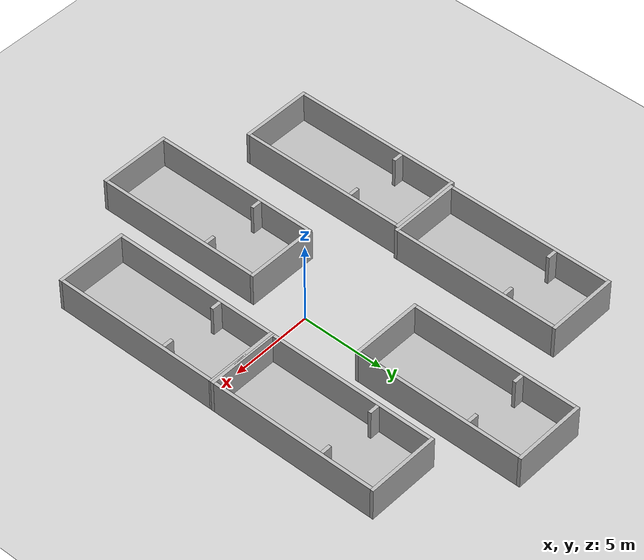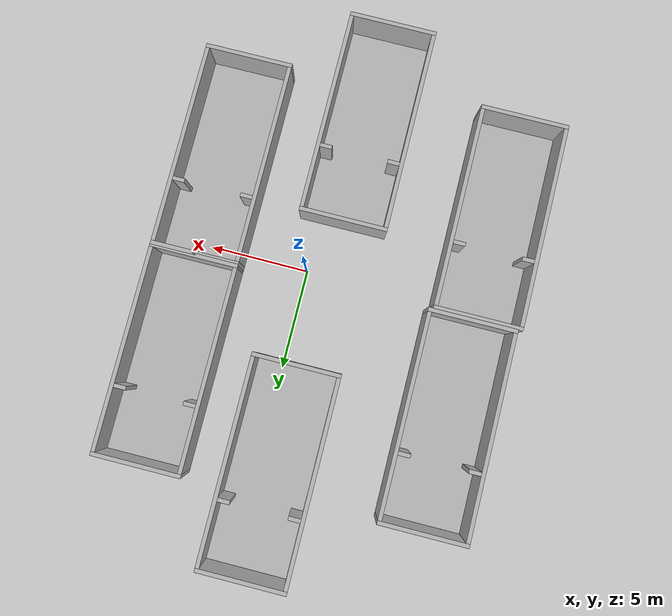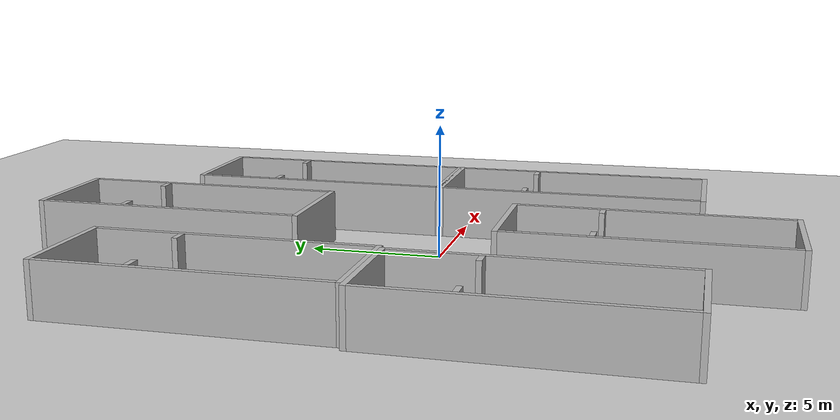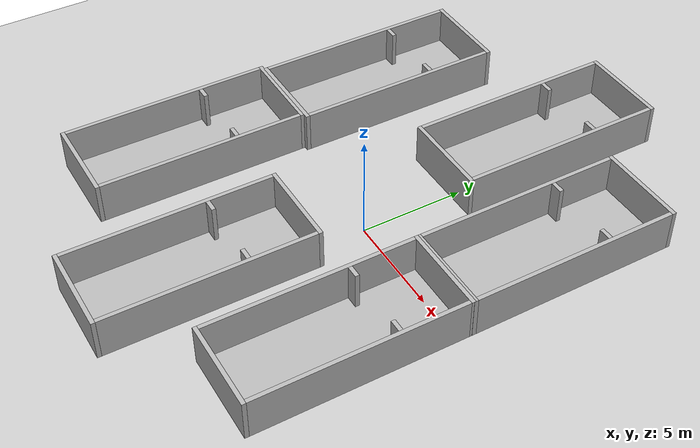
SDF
<sdf version="1.6">
 <world name="default">
  <light name="sun" type="directional">
   <pose>0 0 10 0 -0 0</pose>
   <diffuse>0.8 0.8 0.8 1</diffuse>
   <specular>0.2 0.2 0.2 1</specular>
   <attenuation>
    <range>1000</range>
    <constant>0.9</constant>
    <linear>0.01</linear>
    <quadratic>0.001</quadratic>
   </attenuation>
   <direction>-0.5 0.1 -0.9</direction>
  </light>
  <model name="ground_plane">
   <static>1</static>
   <link name="link">
    <collision name="collision">
     <geometry><plane><normal>0 0 1</normal><size>100 100</size></plane></geometry>
     <surface>
      <contact><collide_bitmask>65535</collide_bitmask></contact>
      <friction><ode><mu>100</mu><mu2>50</mu2></ode></friction>
     </surface>
    </collision>
    <visual name="visual">
     <cast_shadows>0</cast_shadows>
     <geometry><plane><normal>0 0 1</normal><size>100 100</size></plane></geometry>
     <material>
      <script><uri>file://media/materials/scripts/gazebo.material</uri><name>Gazebo/Grey</name></script>
     </material>
    </visual>
   </link>
  </model>
  <gravity>0 0 -9.8</gravity>
  <magnetic_field>6e-06 2.3e-05 -4.2e-05</magnetic_field>
  <atmosphere type="adiabatic"/>
  <physics name="default_physics" default="0" type="ode">
   <max_step_size>0.001</max_step_size>
   <real_time_factor>1</real_time_factor>
   <real_time_update_rate>1000</real_time_update_rate>
  </physics>
  <scene><ambient>0.4 0.4 0.4 1</ambient><background>0.7 0.7 0.7 1</background><shadows>1</shadows></scene>
  <spherical_coordinates>
   <surface_model>EARTH_WGS84</surface_model>
   <latitude_deg>0</latitude_deg>
   <longitude_deg>0</longitude_deg>
   <elevation>0</elevation>
   <heading_deg>0</heading_deg>
  </spherical_coordinates>
  <model name="Dynamic Env Test1">
   <static>1</static>
   <link name="link1">
    <pose>0 4 0.1 0 -0 0</pose>
    <collision name="collision"><geometry><box><size>4 10 0.2</size></box></geometry></collision>
    <visual name="visual">
     <cast_shadows>0</cast_shadows>
     <geometry><box><size>4 10 0.2</size></box></geometry>
    </visual>
   </link>
   <link name="link2">
    <pose>2.1 4 1 0 -0 0</pose>
    <collision name="collision"><geometry><box><size>0.2 10 2</size></box></geometry></collision>
    <visual name="visual">
     <cast_shadows>0</cast_shadows>
     <geometry><box><size>0.2 10 2</size></box></geometry>
    </visual>
   </link>
   <link name="link3">
    <pose>-2.1 4 1 0 -0 0</pose>
    <collision name="collision"><geometry><box><size>0.2 10 2</size></box></geometry></collision>
    <visual name="visual">
     <cast_shadows>0</cast_shadows>
     <geometry><box><size>0.2 10 2</size></box></geometry>
    </visual>
   </link>
   <link name="link4">
    <pose>1.7 5.8 1 0 -0 0</pose>
    <collision name="collision"><geometry><box><size>0.6 0.2 2</size></box></geometry></collision>
    <visual name="visual">
     <cast_shadows>0</cast_shadows>
     <geometry><box><size>0.6 0.2 2</size></box></geometry>
    </visual>
   </link>
   <link name="link5">
    <pose>-1.7 5.8 1 0 -0 0</pose>
    <collision name="collision"><geometry><box><size>0.6 0.2 2</size></box></geometry></collision>
    <visual name="visual">
     <cast_shadows>0</cast_shadows>
     <geometry><box><size>0.6 0.2 2</size></box></geometry>
    </visual>
   </link>
   <link name="link6">
    <pose>0 -1.1 1 0 -0 0</pose>
    <collision name="collision"><geometry><box><size>4.4 0.2 2</size></box></geometry></collision>
    <visual name="visual">
     <cast_shadows>0</cast_shadows>
     <geometry><box><size>4.4 0.2 2</size></box></geometry>
    </visual>
   </link>
   <link name="link7">
    <pose>0 9.1 1 0 -0 0</pose>
    <collision name="collision"><geometry><box><size>4.4 0.2 2</size></box></geometry></collision>
    <visual name="visual">
     <cast_shadows>0</cast_shadows>
     <geometry><box><size>4.4 0.2 2</size></box></geometry>
    </visual>
   </link>
   <pose>-8.6005 -8.70559 0 0 -0 0</pose>
  </model>
  <model name="Dynamic Env Test1_0">
   <static>1</static>
   <link name="link1">
    <pose>0 4 0.1 0 -0 0</pose>
    <collision name="collision"><geometry><box><size>4 10 0.2</size></box></geometry></collision>
    <visual name="visual">
     <cast_shadows>0</cast_shadows>
     <geometry><box><size>4 10 0.2</size></box></geometry>
    </visual>
   </link>
   <link name="link2">
    <pose>2.1 4 1 0 -0 0</pose>
    <collision name="collision"><geometry><box><size>0.2 10 2</size></box></geometry></collision>
    <visual name="visual">
     <cast_shadows>0</cast_shadows>
     <geometry><box><size>0.2 10 2</size></box></geometry>
    </visual>
   </link>
   <link name="link3">
    <pose>-2.1 4 1 0 -0 0</pose>
    <collision name="collision"><geometry><box><size>0.2 10 2</size></box></geometry></collision>
    <visual name="visual">
     <cast_shadows>0</cast_shadows>
     <geometry><box><size>0.2 10 2</size></box></geometry>
    </visual>
   </link>
   <link name="link4">
    <pose>1.7 5.8 1 0 -0 0</pose>
    <collision name="collision"><geometry><box><size>0.6 0.2 2</size></box></geometry></collision>
    <visual name="visual">
     <cast_shadows>0</cast_shadows>
     <geometry><box><size>0.6 0.2 2</size></box></geometry>
    </visual>
   </link>
   <link name="link5">
    <pose>-1.7 5.8 1 0 -0 0</pose>
    <collision name="collision"><geometry><box><size>0.6 0.2 2</size></box></geometry></collision>
    <visual name="visual">
     <cast_shadows>0</cast_shadows>
     <geometry><box><size>0.6 0.2 2</size></box></geometry>
    </visual>
   </link>
   <link name="link6">
    <pose>0 -1.1 1 0 -0 0</pose>
    <collision name="collision"><geometry><box><size>4.4 0.2 2</size></box></geometry></collision>
    <visual name="visual">
     <cast_shadows>0</cast_shadows>
     <geometry><box><size>4.4 0.2 2</size></box></geometry>
    </visual>
   </link>
   <link name="link7">
    <pose>0 9.1 1 0 -0 0</pose>
    <collision name="collision"><geometry><box><size>4.4 0.2 2</size></box></geometry></collision>
    <visual name="visual">
     <cast_shadows>0</cast_shadows>
     <geometry><box><size>4.4 0.2 2</size></box></geometry>
    </visual>
   </link>
   <pose>-8.37688 1.66143 0 0 -0 0</pose>
  </model>
  <model name="Dynamic Env Test1_1">
   <static>1</static>
   <link name="link1">
    <pose>0 4 0.1 0 -0 0</pose>
    <collision name="collision"><geometry><box><size>4 10 0.2</size></box></geometry></collision>
    <visual name="visual">
     <cast_shadows>0</cast_shadows>
     <geometry><box><size>4 10 0.2</size></box></geometry>
    </visual>
   </link>
   <link name="link2">
    <pose>2.1 4 1 0 -0 0</pose>
    <collision name="collision"><geometry><box><size>0.2 10 2</size></box></geometry></collision>
    <visual name="visual">
     <cast_shadows>0</cast_shadows>
     <geometry><box><size>0.2 10 2</size></box></geometry>
    </visual>
   </link>
   <link name="link3">
    <pose>-2.1 4 1 0 -0 0</pose>
    <collision name="collision"><geometry><box><size>0.2 10 2</size></box></geometry></collision>
    <visual name="visual">
     <cast_shadows>0</cast_shadows>
     <geometry><box><size>0.2 10 2</size></box></geometry>
    </visual>
   </link>
   <link name="link4">
    <pose>1.7 5.8 1 0 -0 0</pose>
    <collision name="collision"><geometry><box><size>0.6 0.2 2</size></box></geometry></collision>
    <visual name="visual">
     <cast_shadows>0</cast_shadows>
     <geometry><box><size>0.6 0.2 2</size></box></geometry>
    </visual>
   </link>
   <link name="link5">
    <pose>-1.7 5.8 1 0 -0 0</pose>
    <collision name="collision"><geometry><box><size>0.6 0.2 2</size></box></geometry></collision>
    <visual name="visual">
     <cast_shadows>0</cast_shadows>
     <geometry><box><size>0.6 0.2 2</size></box></geometry>
    </visual>
   </link>
   <link name="link6">
    <pose>0 -1.1 1 0 -0 0</pose>
    <collision name="collision"><geometry><box><size>4.4 0.2 2</size></box></geometry></collision>
    <visual name="visual">
     <cast_shadows>0</cast_shadows>
     <geometry><box><size>4.4 0.2 2</size></box></geometry>
    </visual>
   </link>
   <link name="link7">
    <pose>0 9.1 1 0 -0 0</pose>
    <collision name="collision"><geometry><box><size>4.4 0.2 2</size></box></geometry></collision>
    <visual name="visual">
     <cast_shadows>0</cast_shadows>
     <geometry><box><size>4.4 0.2 2</size></box></geometry>
    </visual>
   </link>
   <pose>-1.18366 -11.7808 0 0 -0 0</pose>
  </model>
  <model name="Dynamic Env Test1_2">
   <static>1</static>
   <link name="link1">
    <pose>0 4 0.1 0 -0 0</pose>
    <collision name="collision"><geometry><box><size>4 10 0.2</size></box></geometry></collision>
    <visual name="visual">
     <cast_shadows>0</cast_shadows>
     <geometry><box><size>4 10 0.2</size></box></geometry>
    </visual>
   </link>
   <link name="link2">
    <pose>2.1 4 1 0 -0 0</pose>
    <collision name="collision"><geometry><box><size>0.2 10 2</size></box></geometry></collision>
    <visual name="visual">
     <cast_shadows>0</cast_shadows>
     <geometry><box><size>0.2 10 2</size></box></geometry>
    </visual>
   </link>
   <link name="link3">
    <pose>-2.1 4 1 0 -0 0</pose>
    <collision name="collision"><geometry><box><size>0.2 10 2</size></box></geometry></collision>
    <visual name="visual">
     <cast_shadows>0</cast_shadows>
     <geometry><box><size>0.2 10 2</size></box></geometry>
    </visual>
   </link>
   <link name="link4">
    <pose>1.7 5.8 1 0 -0 0</pose>
    <collision name="collision"><geometry><box><size>0.6 0.2 2</size></box></geometry></collision>
    <visual name="visual">
     <cast_shadows>0</cast_shadows>
     <geometry><box><size>0.6 0.2 2</size></box></geometry>
    </visual>
   </link>
   <link name="link5">
    <pose>-1.7 5.8 1 0 -0 0</pose>
    <collision name="collision"><geometry><box><size>0.6 0.2 2</size></box></geometry></collision>
    <visual name="visual">
     <cast_shadows>0</cast_shadows>
     <geometry><box><size>0.6 0.2 2</size></box></geometry>
    </visual>
   </link>
   <link name="link6">
    <pose>0 -1.1 1 0 -0 0</pose>
    <collision name="collision"><geometry><box><size>4.4 0.2 2</size></box></geometry></collision>
    <visual name="visual">
     <cast_shadows>0</cast_shadows>
     <geometry><box><size>4.4 0.2 2</size></box></geometry>
    </visual>
   </link>
   <link name="link7">
    <pose>0 9.1 1 0 -0 0</pose>
    <collision name="collision"><geometry><box><size>4.4 0.2 2</size></box></geometry></collision>
    <visual name="visual">
     <cast_shadows>0</cast_shadows>
     <geometry><box><size>4.4 0.2 2</size></box></geometry>
    </visual>
   </link>
   <pose>-0.751914 5.77654 0 0 -0 0</pose>
  </model>
  <model name="Dynamic Env Test1_3">
   <static>1</static>
   <link name="link1">
    <pose>0 4 0.1 0 -0 0</pose>
    <collision name="collision"><geometry><box><size>4 10 0.2</size></box></geometry></collision>
    <visual name="visual">
     <cast_shadows>0</cast_shadows>
     <geometry><box><size>4 10 0.2</size></box></geometry>
    </visual>
   </link>
   <link name="link2">
    <pose>2.1 4 1 0 -0 0</pose>
    <collision name="collision"><geometry><box><size>0.2 10 2</size></box></geometry></collision>
    <visual name="visual">
     <cast_shadows>0</cast_shadows>
     <geometry><box><size>0.2 10 2</size></box></geometry>
    </visual>
   </link>
   <link name="link3">
    <pose>-2.1 4 1 0 -0 0</pose>
    <collision name="collision"><geometry><box><size>0.2 10 2</size></box></geometry></collision>
    <visual name="visual">
     <cast_shadows>0</cast_shadows>
     <geometry><box><size>0.2 10 2</size></box></geometry>
    </visual>
   </link>
   <link name="link4">
    <pose>1.7 5.8 1 0 -0 0</pose>
    <collision name="collision"><geometry><box><size>0.6 0.2 2</size></box></geometry></collision>
    <visual name="visual">
     <cast_shadows>0</cast_shadows>
     <geometry><box><size>0.6 0.2 2</size></box></geometry>
    </visual>
   </link>
   <link name="link5">
    <pose>-1.7 5.8 1 0 -0 0</pose>
    <collision name="collision"><geometry><box><size>0.6 0.2 2</size></box></geometry></collision>
    <visual name="visual">
     <cast_shadows>0</cast_shadows>
     <geometry><box><size>0.6 0.2 2</size></box></geometry>
    </visual>
   </link>
   <link name="link6">
    <pose>0 -1.1 1 0 -0 0</pose>
    <collision name="collision"><geometry><box><size>4.4 0.2 2</size></box></geometry></collision>
    <visual name="visual">
     <cast_shadows>0</cast_shadows>
     <geometry><box><size>4.4 0.2 2</size></box></geometry>
    </visual>
   </link>
   <link name="link7">
    <pose>0 9.1 1 0 -0 0</pose>
    <collision name="collision"><geometry><box><size>4.4 0.2 2</size></box></geometry></collision>
    <visual name="visual">
     <cast_shadows>0</cast_shadows>
     <geometry><box><size>4.4 0.2 2</size></box></geometry>
    </visual>
   </link>
   <pose>5.35566 -8.41413 0 0 -0 0</pose>
  </model>
  <model name="Dynamic Env Test1_4">
   <static>1</static>
   <link name="link1">
    <pose>0 4 0.1 0 -0 0</pose>
    <collision name="collision"><geometry><box><size>4 10 0.2</size></box></geometry></collision>
    <visual name="visual">
     <cast_shadows>0</cast_shadows>
     <geometry><box><size>4 10 0.2</size></box></geometry>
    </visual>
   </link>
   <link name="link2">
    <pose>2.1 4 1 0 -0 0</pose>
    <collision name="collision"><geometry><box><size>0.2 10 2</size></box></geometry></collision>
    <visual name="visual">
     <cast_shadows>0</cast_shadows>
     <geometry><box><size>0.2 10 2</size></box></geometry>
    </visual>
   </link>
   <link name="link3">
    <pose>-2.1 4 1 0 -0 0</pose>
    <collision name="collision"><geometry><box><size>0.2 10 2</size></box></geometry></collision>
    <visual name="visual">
     <cast_shadows>0</cast_shadows>
     <geometry><box><size>0.2 10 2</size></box></geometry>
    </visual>
   </link>
   <link name="link4">
    <pose>1.7 5.8 1 0 -0 0</pose>
    <collision name="collision"><geometry><box><size>0.6 0.2 2</size></box></geometry></collision>
    <visual name="visual">
     <cast_shadows>0</cast_shadows>
     <geometry><box><size>0.6 0.2 2</size></box></geometry>
    </visual>
   </link>
   <link name="link5">
    <pose>-1.7 5.8 1 0 -0 0</pose>
    <collision name="collision"><geometry><box><size>0.6 0.2 2</size></box></geometry></collision>
    <visual name="visual">
     <cast_shadows>0</cast_shadows>
     <geometry><box><size>0.6 0.2 2</size></box></geometry>
    </visual>
   </link>
   <link name="link6">
    <pose>0 -1.1 1 0 -0 0</pose>
    <collision name="collision"><geometry><box><size>4.4 0.2 2</size></box></geometry></collision>
    <visual name="visual">
     <cast_shadows>0</cast_shadows>
     <geometry><box><size>4.4 0.2 2</size></box></geometry>
    </visual>
   </link>
   <link name="link7">
    <pose>0 9.1 1 0 -0 0</pose>
    <collision name="collision"><geometry><box><size>4.4 0.2 2</size></box></geometry></collision>
    <visual name="visual">
     <cast_shadows>0</cast_shadows>
     <geometry><box><size>4.4 0.2 2</size></box></geometry>
    </visual>
   </link>
   <pose>5.36104 1.90371 0 0 -0 0</pose>
  </model>
 </world>
</sdf>
